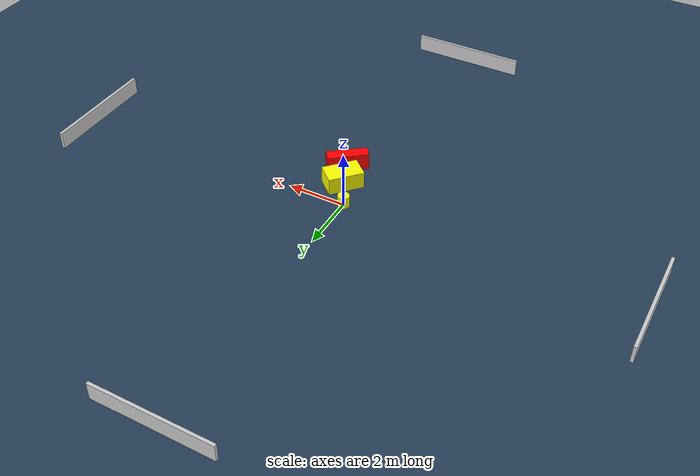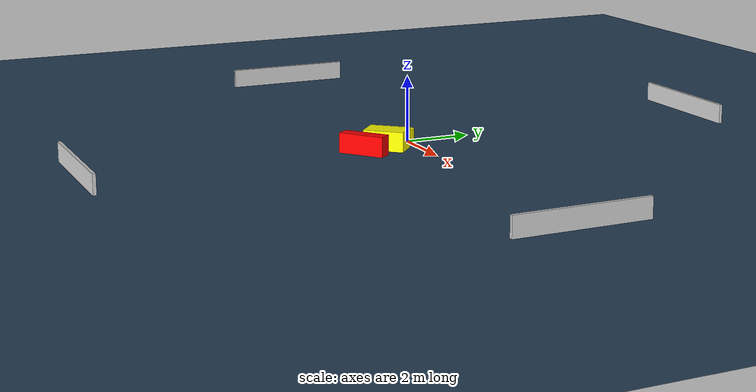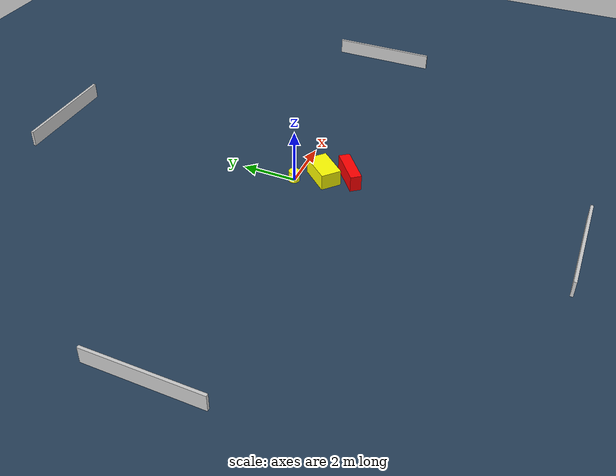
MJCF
<?xml version="1.0" ?>
<mujoco model="generated_environment">
  <option timestep="0.01" integrator="RK4" cone="elliptic"/>
  <default>
    <geom density="1"/>
  </default>
  <asset>
    <texture builtin="gradient" height="3072" name="skybox" rgb1="0.3 0.5 0.7" rgb2="0 0 0" type="skybox" width="512"/>
    <texture builtin="checker" height="300" name="groundplane" rgb1="0.2 0.3 0.4" rgb2="0.1 0.2 0.3" type="2d" width="300"/>
    <material name="groundplane" reflectance="0.2" texrepeat="5 5" texture="groundplane"/>
  </asset>
  <worldbody>
    <light dir="0 0 -1" directional="true" pos="0 0 1.5"/>
    <geom condim="3" friction="0.5 0.005 0.001" material="groundplane" name="floor" pos="0 0 0" size="0 0 0.05" type="plane"/>
    <body name="walls">
      <geom name="wall_1" condim="4" pos="-10.0 0.0 0.3" rgba="0.800000011920929 0.800000011920929 0.800000011920929 1.0" size="0.05 2.0 0.3" type="box"/>
      <geom name="wall_2" condim="4" pos="10.0 0.0 0.3" rgba="0.800000011920929 0.800000011920929 0.800000011920929 1.0" size="0.05 2.0 0.3" type="box"/>
      <geom name="wall_3" condim="4" pos="0.0 -10.0 0.3" rgba="0.800000011920929 0.800000011920929 0.800000011920929 1.0" size="2.0 0.05 0.3" type="box"/>
      <geom name="wall_4" condim="4" pos="0.0 10.0 0.3" rgba="0.800000011920929 0.800000011920929 0.800000011920929 1.0" size="2.0 0.05 0.3" type="box"/>
    </body>
    <body name="robot">
      <joint name="joint_x" type="slide" pos="0 0 0" axis="1 0 0"/>
      <joint name="joint_y" type="slide" pos="0 0 0" axis="0 1 0"/>
      <geom name="robot" type="cylinder" pos="0.0 0.0 0.2" size="0.2 0.2 0.0" mass="5.0" friction="1.0 0.005 0.0001" condim="4" rgba="1.0 1.0 0.0 1.0"/>
    </body>
    <body name="obstacle_1_movable">
      <geom name="obstacle_1_movable" condim="4" pos="0.533911906313139 -0.9213776054769088 0.3" euler="0 0 48.13961075929268" friction="0.0 0.005 0.001" rgba="1.0 1.0 0.0 1.0" size="0.6110384934725699 0.37545293346756925 0.3" type="box" mass="0.1"/>
      <joint type="free"/>
    </body>
    <body name="obstacle_2_static">
      <geom name="obstacle_2_static" condim="4" pos="0.8486049474131645 -1.8037456547027526 0.3" euler="0 0 38.16692526987379" friction="0.0 0.005 0.001" rgba="1.0 0.0 0.0 1.0" size="0.706368004062562 0.20530167077916184 0.3" type="box"/>
    </body>
  </worldbody>
  <actuator>
    <motor name="actuator_x" joint="joint_x" gear="1" ctrlrange="-1 1"/>
    <motor name="actuator_y" joint="joint_y" gear="1" ctrlrange="-1 1"/>
  </actuator>
</mujoco>
